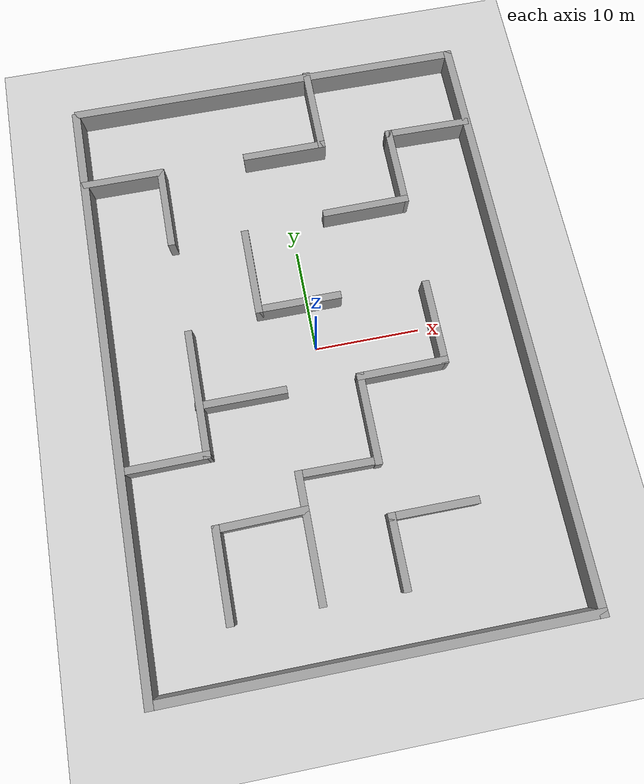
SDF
<sdf version="1.7">
 <world name="default">
  <light name="sun" type="directional">
   <pose>0 0 10 0 -0 0</pose>
   <diffuse>0.8 0.8 0.8 1</diffuse>
   <specular>0.2 0.2 0.2 1</specular>
   <attenuation>
    <range>1000</range>
    <constant>0.9</constant>
    <linear>0.01</linear>
    <quadratic>0.001</quadratic>
   </attenuation>
   <direction>-0.5 0.1 -0.9</direction>
   <spot><inner_angle>0</inner_angle><outer_angle>0</outer_angle><falloff>0</falloff></spot>
  </light>
  <model name="ground_plane">
   <static>1</static>
   <link name="link">
    <collision name="collision">
     <geometry><plane><normal>0 0 1</normal><size>100 100</size></plane></geometry>
     <surface><friction><ode><mu>100</mu><mu2>50</mu2></ode></friction></surface>
    </collision>
    <visual name="visual">
     <cast_shadows>0</cast_shadows>
     <geometry><plane><normal>0 0 1</normal><size>100 100</size></plane></geometry>
     <material>
      <script><uri>file://media/materials/scripts/gazebo.material</uri><name>Gazebo/Grey</name></script>
     </material>
    </visual>
   </link>
  </model>
  <gravity>0 0 -9.8</gravity>
  <magnetic_field>6e-06 2.3e-05 -4.2e-05</magnetic_field>
  <atmosphere type="adiabatic"/>
  <physics type="ode">
   <max_step_size>0.001</max_step_size>
   <real_time_factor>1</real_time_factor>
   <real_time_update_rate>1000</real_time_update_rate>
  </physics>
  <scene><ambient>0.4 0.4 0.4 1</ambient><background>0.7 0.7 0.7 1</background><shadows>1</shadows></scene>
  <spherical_coordinates>
   <surface_model>EARTH_WGS84</surface_model>
   <latitude_deg>0</latitude_deg>
   <longitude_deg>0</longitude_deg>
   <elevation>0</elevation>
   <heading_deg>0</heading_deg>
  </spherical_coordinates>
  <model name="map4">
   <pose>-0.025502 0.103952 0 0 -0 0</pose>
   <link name="Wall_0">
    <collision name="Wall_0_Collision">
     <geometry><box><size>56.7929 0.8 2.5</size></box></geometry>
     <pose>0 0 1.25 0 -0 0</pose>
    </collision>
    <visual name="Wall_0_Visual">
     <pose>0 0 1.25 0 -0 0</pose>
     <geometry><box><size>56.7929 0.8 2.5</size></box></geometry>
     <material>
      <script><uri>file://media/materials/scripts/gazebo.material</uri><name>Gazebo/Grey</name></script>
      <ambient>1 1 1 1</ambient>
     </material>
     <meta><layer>0</layer></meta>
    </visual>
    <pose>-19.425 -0.200373 0 0 -0 -1.56824</pose>
   </link>
   <link name="Wall_10">
    <collision name="Wall_10_Collision">
     <geometry><box><size>8.55 0.7 2.5</size></box></geometry>
     <pose>0 0 1.25 0 -0 0</pose>
    </collision>
    <visual name="Wall_10_Visual">
     <pose>0 0 1.25 0 -0 0</pose>
     <geometry><box><size>8.55 0.7 2.5</size></box></geometry>
     <material>
      <script><uri>file://media/materials/scripts/gazebo.material</uri><name>Gazebo/Grey</name></script>
      <ambient>1 1 1 1</ambient>
     </material>
     <meta><layer>0</layer></meta>
    </visual>
    <pose>-4.7195 7.98705 0 0 -0 -1.5708</pose>
   </link>
   <link name="Wall_11">
    <collision name="Wall_11_Collision">
     <geometry><box><size>8.30016 0.7 2.5</size></box></geometry>
     <pose>0 0 1.25 0 -0 0</pose>
    </collision>
    <visual name="Wall_11_Visual">
     <pose>0 0 1.25 0 -0 0</pose>
     <geometry><box><size>8.30016 0.7 2.5</size></box></geometry>
     <material>
      <script><uri>file://media/materials/scripts/gazebo.material</uri><name>Gazebo/Grey</name></script>
      <ambient>1 1 1 1</ambient>
     </material>
     <meta><layer>0</layer></meta>
    </visual>
    <pose>-0.919498 4.06205 0 0 -0 0</pose>
   </link>
   <link name="Wall_13">
    <collision name="Wall_13_Collision">
     <geometry><box><size>12.1937 0.7 2.5</size></box></geometry>
     <pose>0 0 1.25 0 -0 0</pose>
    </collision>
    <visual name="Wall_13_Visual">
     <pose>0 0 1.25 0 -0 0</pose>
     <geometry><box><size>12.1937 0.7 2.5</size></box></geometry>
     <material>
      <script><uri>file://media/materials/scripts/gazebo.material</uri><name>Gazebo/Grey</name></script>
      <ambient>1 1 1 1</ambient>
     </material>
     <meta><layer>0</layer></meta>
    </visual>
    <pose>-11.5675 -2.89379 0 0 -0 -1.5708</pose>
   </link>
   <link name="Wall_14">
    <collision name="Wall_14_Collision">
     <geometry><box><size>8.55032 0.7 2.5</size></box></geometry>
     <pose>0 0 1.25 0 -0 0</pose>
    </collision>
    <visual name="Wall_14_Visual">
     <pose>0 0 1.25 0 -0 0</pose>
     <geometry><box><size>8.55032 0.7 2.5</size></box></geometry>
     <material>
      <script><uri>file://media/materials/scripts/gazebo.material</uri><name>Gazebo/Grey</name></script>
      <ambient>1 1 1 1</ambient>
     </material>
     <meta><layer>0</layer></meta>
    </visual>
    <pose>-15.4925 -8.67613 0 0 -0 -3.13255</pose>
   </link>
   <link name="Wall_16">
    <collision name="Wall_16_Collision">
     <geometry><box><size>8.55 0.7 2.5</size></box></geometry>
     <pose>0 0 1.25 0 -0 0</pose>
    </collision>
    <visual name="Wall_16_Visual">
     <pose>0 0 1.25 0 -0 0</pose>
     <geometry><box><size>8.55 0.7 2.5</size></box></geometry>
     <material>
      <script><uri>file://media/materials/scripts/gazebo.material</uri><name>Gazebo/Grey</name></script>
      <ambient>1 1 1 1</ambient>
     </material>
     <meta><layer>0</layer></meta>
    </visual>
    <pose>-7.71382 -4.06662 0 0 -0 0</pose>
   </link>
   <link name="Wall_18">
    <collision name="Wall_18_Collision">
     <geometry><box><size>8.55 0.7 2.5</size></box></geometry>
     <pose>0 0 1.25 0 -0 0</pose>
    </collision>
    <visual name="Wall_18_Visual">
     <pose>0 0 1.25 0 -0 0</pose>
     <geometry><box><size>8.55 0.7 2.5</size></box></geometry>
     <material>
      <script><uri>file://media/materials/scripts/gazebo.material</uri><name>Gazebo/Grey</name></script>
      <ambient>1 1 1 1</ambient>
     </material>
     <meta><layer>0</layer></meta>
    </visual>
    <pose>-11.7815 -19.118 0 0 -0 1.5708</pose>
   </link>
   <link name="Wall_19">
    <collision name="Wall_19_Collision">
     <geometry><box><size>8.69395 0.7 2.5</size></box></geometry>
     <pose>0 0 1.25 0 -0 0</pose>
    </collision>
    <visual name="Wall_19_Visual">
     <pose>0 0 1.25 0 -0 0</pose>
     <geometry><box><size>8.69395 0.7 2.5</size></box></geometry>
     <material>
      <script><uri>file://media/materials/scripts/gazebo.material</uri><name>Gazebo/Grey</name></script>
      <ambient>1 1 1 1</ambient>
     </material>
     <meta><layer>0</layer></meta>
    </visual>
    <pose>-7.78516 -15.1216 0 0 -0 0.017849</pose>
   </link>
   <link name="Wall_2">
    <collision name="Wall_2_Collision">
     <geometry><box><size>39.6497 0.8 2.5</size></box></geometry>
     <pose>0 0 1.25 0 -0 0</pose>
    </collision>
    <visual name="Wall_2_Visual">
     <pose>0 0 1.25 0 -0 0</pose>
     <geometry><box><size>39.6497 0.8 2.5</size></box></geometry>
     <material>
      <script><uri>file://media/materials/scripts/gazebo.material</uri><name>Gazebo/Grey</name></script>
      <ambient>1 1 1 1</ambient>
     </material>
     <meta><layer>0</layer></meta>
    </visual>
    <pose>0.071502 -28.197 0 0 -0 0</pose>
   </link>
   <link name="Wall_20">
    <collision name="Wall_20_Collision">
     <geometry><box><size>8.55 0.7 2.5</size></box></geometry>
     <pose>0 0 1.25 0 -0 0</pose>
    </collision>
    <visual name="Wall_20_Visual">
     <pose>0 0 1.25 0 -0 0</pose>
     <geometry><box><size>8.55 0.7 2.5</size></box></geometry>
     <material>
      <script><uri>file://media/materials/scripts/gazebo.material</uri><name>Gazebo/Grey</name></script>
      <ambient>1 1 1 1</ambient>
     </material>
     <meta><layer>0</layer></meta>
    </visual>
    <pose>-3.78883 -19.0466 0 0 -0 -1.5708</pose>
   </link>
   <link name="Wall_22">
    <collision name="Wall_22_Collision">
     <geometry><box><size>8.3 0.7 2.5</size></box></geometry>
     <pose>0 0 1.25 0 -0 0</pose>
    </collision>
    <visual name="Wall_22_Visual">
     <pose>0 0 1.25 0 -0 0</pose>
     <geometry><box><size>8.3 0.7 2.5</size></box></geometry>
     <material>
      <script><uri>file://media/materials/scripts/gazebo.material</uri><name>Gazebo/Grey</name></script>
      <ambient>1 1 1 1</ambient>
     </material>
     <meta><layer>0</layer></meta>
    </visual>
    <pose>11.4025 -0.233952 0 0 -0 -1.5708</pose>
   </link>
   <link name="Wall_23">
    <collision name="Wall_23_Collision">
     <geometry><box><size>8.69233 0.7 2.5</size></box></geometry>
     <pose>0 0 1.25 0 -0 0</pose>
    </collision>
    <visual name="Wall_23_Visual">
     <pose>0 0 1.25 0 -0 0</pose>
     <geometry><box><size>8.69233 0.7 2.5</size></box></geometry>
     <material>
      <script><uri>file://media/materials/scripts/gazebo.material</uri><name>Gazebo/Grey</name></script>
      <ambient>1 1 1 1</ambient>
     </material>
     <meta><layer>0</layer></meta>
    </visual>
    <pose>7.4065 -4.06945 0 0 -0 -3.13271</pose>
   </link>
   <link name="Wall_24">
    <collision name="Wall_24_Collision">
     <geometry><box><size>8.62167 0.7 2.5</size></box></geometry>
     <pose>0 0 1.25 0 -0 0</pose>
    </collision>
    <visual name="Wall_24_Visual">
     <pose>0 0 1.25 0 -0 0</pose>
     <geometry><box><size>8.62167 0.7 2.5</size></box></geometry>
     <material>
      <script><uri>file://media/materials/scripts/gazebo.material</uri><name>Gazebo/Grey</name></script>
      <ambient>1 1 1 1</ambient>
     </material>
     <meta><layer>0</layer></meta>
    </visual>
    <pose>3.41 -8.06579 0 0 -0 -1.57092</pose>
   </link>
   <link name="Wall_25">
    <collision name="Wall_25_Collision">
     <geometry><box><size>7.90734 0.7 2.5</size></box></geometry>
     <pose>0 0 1.25 0 -0 0</pose>
    </collision>
    <visual name="Wall_25_Visual">
     <pose>0 0 1.25 0 -0 0</pose>
     <geometry><box><size>7.90734 0.7 2.5</size></box></geometry>
     <material>
      <script><uri>file://media/materials/scripts/gazebo.material</uri><name>Gazebo/Grey</name></script>
      <ambient>1 1 1 1</ambient>
     </material>
     <meta><layer>0</layer></meta>
    </visual>
    <pose>-0.194003 -11.9196 0 0 -0 3.1317</pose>
   </link>
   <link name="Wall_26">
    <collision name="Wall_26_Collision">
     <geometry><box><size>4.05006 0.7 2.5</size></box></geometry>
     <pose>0 0 1.25 0 -0 0</pose>
    </collision>
    <visual name="Wall_26_Visual">
     <pose>0 0 1.25 0 -0 0</pose>
     <geometry><box><size>4.05006 0.7 2.5</size></box></geometry>
     <material>
      <script><uri>file://media/materials/scripts/gazebo.material</uri><name>Gazebo/Grey</name></script>
      <ambient>1 1 1 1</ambient>
     </material>
     <meta><layer>0</layer></meta>
    </visual>
    <pose>-3.7975 -13.559 0 0 -0 -1.5708</pose>
   </link>
   <link name="Wall_28">
    <collision name="Wall_28_Collision">
     <geometry><box><size>6.8 0.7 2.5</size></box></geometry>
     <pose>0 0 1.25 0 -0 0</pose>
    </collision>
    <visual name="Wall_28_Visual">
     <pose>0 0 1.25 0 -0 0</pose>
     <geometry><box><size>6.8 0.7 2.5</size></box></geometry>
     <material>
      <script><uri>file://media/materials/scripts/gazebo.material</uri><name>Gazebo/Grey</name></script>
      <ambient>1 1 1 1</ambient>
     </material>
     <meta><layer>0</layer></meta>
    </visual>
    <pose>3.5555 -20.064 0 0 -0 1.5708</pose>
   </link>
   <link name="Wall_29">
    <collision name="Wall_29_Collision">
     <geometry><box><size>8.30021 0.7 2.5</size></box></geometry>
     <pose>0 0 1.25 0 -0 0</pose>
    </collision>
    <visual name="Wall_29_Visual">
     <pose>0 0 1.25 0 -0 0</pose>
     <geometry><box><size>8.30021 0.7 2.5</size></box></geometry>
     <material>
      <script><uri>file://media/materials/scripts/gazebo.material</uri><name>Gazebo/Grey</name></script>
      <ambient>1 1 1 1</ambient>
     </material>
     <meta><layer>0</layer></meta>
    </visual>
    <pose>7.3555 -17.014 0 0 -0 0</pose>
   </link>
   <link name="Wall_3">
    <collision name="Wall_3_Collision">
     <geometry><box><size>57.0433 0.8 2.5</size></box></geometry>
     <pose>0 0 1.25 0 -0 0</pose>
    </collision>
    <visual name="Wall_3_Visual">
     <pose>0 0 1.25 0 -0 0</pose>
     <geometry><box><size>57.0433 0.8 2.5</size></box></geometry>
     <material>
      <script><uri>file://media/materials/scripts/gazebo.material</uri><name>Gazebo/Grey</name></script>
      <ambient>1 1 1 1</ambient>
     </material>
     <meta><layer>0</layer></meta>
    </visual>
    <pose>19.425 -0.075452 0 0 -0 1.57334</pose>
   </link>
   <link name="Wall_31">
    <collision name="Wall_31_Collision">
     <geometry><box><size>8.55032 0.7 2.5</size></box></geometry>
     <pose>0 0 1.25 0 -0 0</pose>
    </collision>
    <visual name="Wall_31_Visual">
     <pose>0 0 1.25 0 -0 0</pose>
     <geometry><box><size>8.55032 0.7 2.5</size></box></geometry>
     <material>
      <script><uri>file://media/materials/scripts/gazebo.material</uri><name>Gazebo/Grey</name></script>
      <ambient>1 1 1 1</ambient>
     </material>
     <meta><layer>0</layer></meta>
    </visual>
    <pose>7.4095 12.6615 0 0 -0 0.009044</pose>
   </link>
   <link name="Wall_32">
    <collision name="Wall_32_Collision">
     <geometry><box><size>8.05034 0.7 2.5</size></box></geometry>
     <pose>0 0 1.25 0 -0 0</pose>
    </collision>
    <visual name="Wall_32_Visual">
     <pose>0 0 1.25 0 -0 0</pose>
     <geometry><box><size>8.05034 0.7 2.5</size></box></geometry>
     <material>
      <script><uri>file://media/materials/scripts/gazebo.material</uri><name>Gazebo/Grey</name></script>
      <ambient>1 1 1 1</ambient>
     </material>
     <meta><layer>0</layer></meta>
    </visual>
    <pose>11.3345 16.372 0 0 -0 1.5708</pose>
   </link>
   <link name="Wall_33">
    <collision name="Wall_33_Collision">
     <geometry><box><size>8.5513 0.7 2.5</size></box></geometry>
     <pose>0 0 1.25 0 -0 0</pose>
    </collision>
    <visual name="Wall_33_Visual">
     <pose>0 0 1.25 0 -0 0</pose>
     <geometry><box><size>8.5513 0.7 2.5</size></box></geometry>
     <material>
      <script><uri>file://media/materials/scripts/gazebo.material</uri><name>Gazebo/Grey</name></script>
      <ambient>1 1 1 1</ambient>
     </material>
     <meta><layer>0</layer></meta>
    </visual>
    <pose>15.2595 20.0115 0 0 -0 -0.009044</pose>
   </link>
   <link name="Wall_35">
    <collision name="Wall_35_Collision">
     <geometry><box><size>8.8 0.7 2.5</size></box></geometry>
     <pose>0 0 1.25 0 -0 0</pose>
    </collision>
    <visual name="Wall_35_Visual">
     <pose>0 0 1.25 0 -0 0</pose>
     <geometry><box><size>8.8 0.7 2.5</size></box></geometry>
     <material>
      <script><uri>file://media/materials/scripts/gazebo.material</uri><name>Gazebo/Grey</name></script>
      <ambient>1 1 1 1</ambient>
     </material>
     <meta><layer>0</layer></meta>
    </visual>
    <pose>4.4115 24.198 0 0 -0 -1.5708</pose>
   </link>
   <link name="Wall_36">
    <collision name="Wall_36_Collision">
     <geometry><box><size>8.29975 0.7 2.5</size></box></geometry>
     <pose>0 0 1.25 0 -0 0</pose>
    </collision>
    <visual name="Wall_36_Visual">
     <pose>0 0 1.25 0 -0 0</pose>
     <geometry><box><size>8.29975 0.7 2.5</size></box></geometry>
     <material>
      <script><uri>file://media/materials/scripts/gazebo.material</uri><name>Gazebo/Grey</name></script>
      <ambient>1 1 1 1</ambient>
     </material>
     <meta><layer>0</layer></meta>
    </visual>
    <pose>0.611502 20.148 0 0 -0 3.14159</pose>
   </link>
   <link name="Wall_4">
    <collision name="Wall_4_Collision">
     <geometry><box><size>39.4 0.8 2.5</size></box></geometry>
     <pose>0 0 1.25 0 -0 0</pose>
    </collision>
    <visual name="Wall_4_Visual">
     <pose>0 0 1.25 0 -0 0</pose>
     <geometry><box><size>39.4 0.8 2.5</size></box></geometry>
     <material>
      <script><uri>file://media/materials/scripts/gazebo.material</uri><name>Gazebo/Grey</name></script>
      <ambient>1 1 1 1</ambient>
     </material>
     <meta><layer>0</layer></meta>
    </visual>
    <pose>0.053502 28.046 0 0 -0 3.14159</pose>
   </link>
   <link name="Wall_6">
    <collision name="Wall_6_Collision">
     <geometry><box><size>8.3 0.7 2.5</size></box></geometry>
     <pose>0 0 1.25 0 -0 0</pose>
    </collision>
    <visual name="Wall_6_Visual">
     <pose>0 0 1.25 0 -0 0</pose>
     <geometry><box><size>8.3 0.7 2.5</size></box></geometry>
     <material>
      <script><uri>file://media/materials/scripts/gazebo.material</uri><name>Gazebo/Grey</name></script>
      <ambient>1 1 1 1</ambient>
     </material>
     <meta><layer>0</layer></meta>
    </visual>
    <pose>-15.6865 20.045 0 0 -0 0</pose>
   </link>
   <link name="Wall_7">
    <collision name="Wall_7_Collision">
     <geometry><box><size>8.30029 0.7 2.5</size></box></geometry>
     <pose>0 0 1.25 0 -0 0</pose>
    </collision>
    <visual name="Wall_7_Visual">
     <pose>0 0 1.25 0 -0 0</pose>
     <geometry><box><size>8.30029 0.7 2.5</size></box></geometry>
     <material>
      <script><uri>file://media/materials/scripts/gazebo.material</uri><name>Gazebo/Grey</name></script>
      <ambient>1 1 1 1</ambient>
     </material>
     <meta><layer>0</layer></meta>
    </visual>
    <pose>-11.8865 16.245 0 0 -0 -1.5708</pose>
   </link>
   <static>1</static>
  </model>
 </world>
</sdf>
